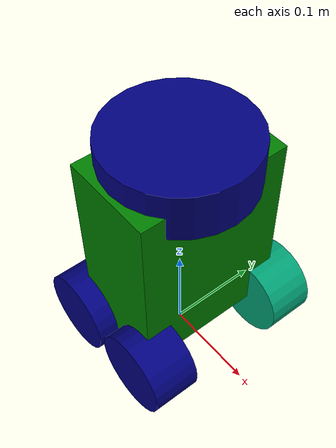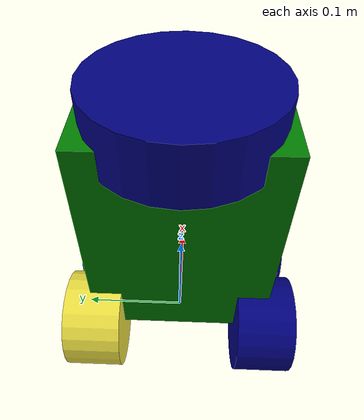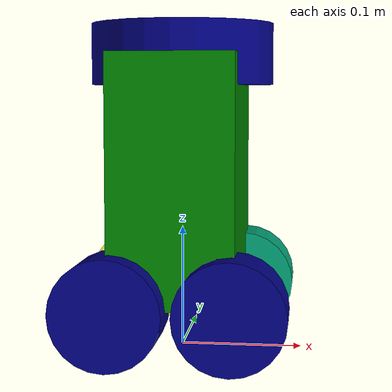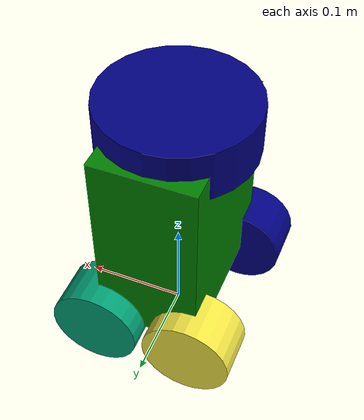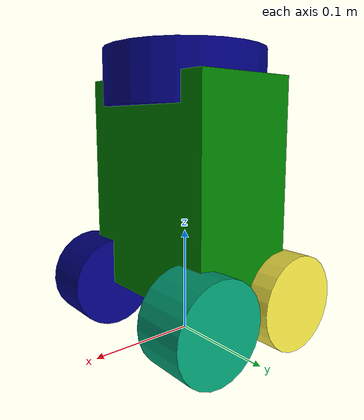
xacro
<?xml version="1.0"?>
<robot name="robot">

  <material name="green">
    <color rgba="0 0.5 0 1"/>
  </material>
  <material name="blue">
    <color rgba="0 0 0.5 1"/>
  </material>

  <link name="base_footprint"/>
  <link name="base_link">
    <visual>
      <geometry>
        <box size="0.1 0.16 0.2"/>
      </geometry>
      <origin xyz="0 0 0.1" rpy="0 0 0"/>
      <material name="green"/>
    </visual>
  </link>

  <link name="LF">
    <visual>
      <geometry>
        <cylinder radius="0.044" length="0.05"/>
      </geometry>
      <origin xyz="0 0 0" rpy="0 0 0"/>
    </visual>
  </link>

  <link name="LB">
    <visual>
      <geometry>
        <cylinder radius="0.044" length="0.05"/>
      </geometry>
      <origin xyz="0 0 0" rpy="0 0 0"/>
    </visual>
  </link>

  <joint name="base_dummy_joint" type="fixed">
    <parent link="base_footprint"/>
    <child link="base_link"/>
    <origin xyz="0 0 0.044" rpy="0 0 0"/>
  </joint>

  <joint name="base_LF" type="continuous">
    <parent link="base_link"/>
    <child link="LF"/>
    <origin xyz="0.0475 0.077 0" rpy="1.5708 0 0"/>
    <axis xyz="0 0 1"/>
  </joint>

  <joint name="base_LB" type="continuous">
    <parent link="base_link"/>
    <child link="LB"/>
    <origin xyz="-0.0475 0.077 0" rpy="1.5708 0 0"/>
    <axis xyz="0 0 1"/>
  </joint>

  <link name="RF">
    <visual>
      <geometry>
        <cylinder radius="0.044" length="0.05"/>
      </geometry>
      <origin xyz="0 0 0" rpy="0 0 0"/>
      <material name="blue"/>
    </visual>
  </link>

  <link name="RB">
    <visual>
      <geometry>
        <cylinder radius="0.044" length="0.05"/>
      </geometry>
      <origin xyz="0 0 0" rpy="0 0 0"/>
      <material name="blue"/>
    </visual>
  </link>

  <joint name="base_RF" type="continuous">
    <parent link="base_link"/>
    <child link="RF"/>
    <origin xyz="0.0475 -0.077 0" rpy="1.5708 0 0"/>
    <axis xyz="0 0 1"/>
  </joint>

  <joint name="base_RB" type="continuous">
    <parent link="base_link"/>
    <child link="RB"/>
    <origin xyz="-0.0475 -0.077 0" rpy="1.5708 0 0"/>
    <axis xyz="0 0 1"/>
  </joint>

  <link name="laser">
    <visual>
      <geometry>
        <cylinder radius="0.075" length="0.05"/>
      </geometry>
      <origin xyz="0 0 0" rpy="0 0 0"/>
      <material name="blue"/>
    </visual>
  </link>

  <joint name="laser_joint" type="fixed">
    <parent link="base_link"/>
    <child link="laser"/>
    <origin xyz="0 0 0.2" rpy="0 0 0"/>
  </joint>

</robot>
